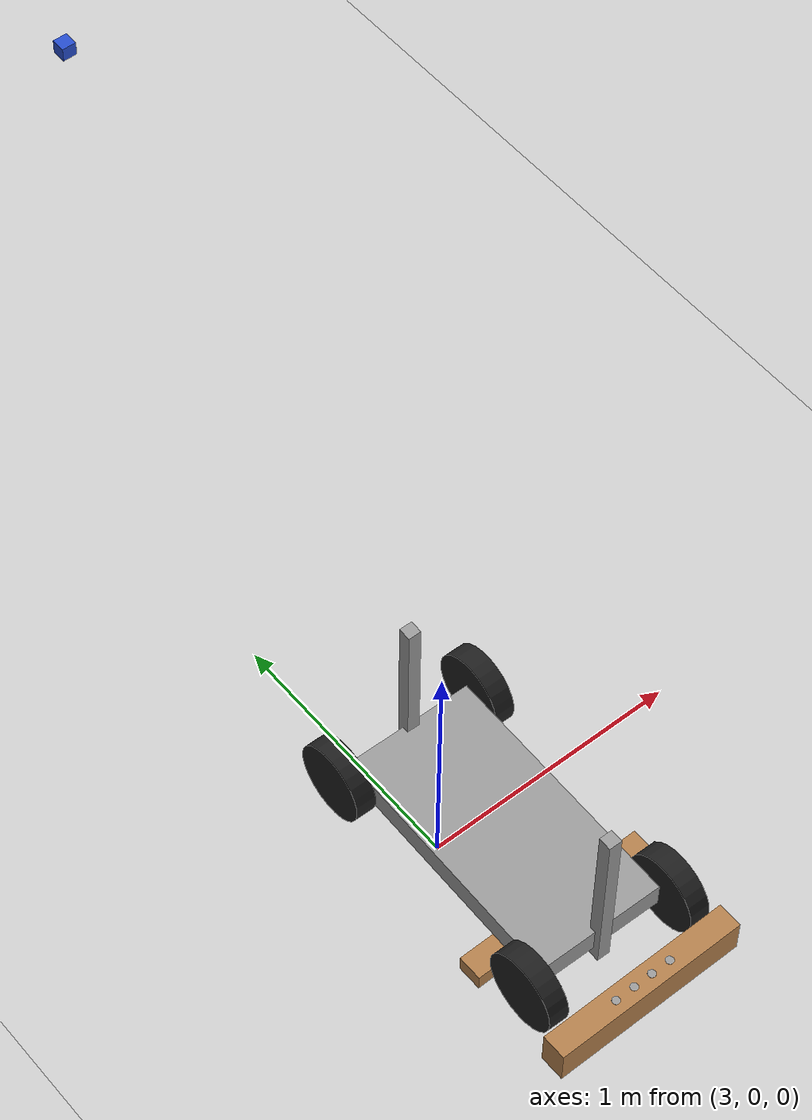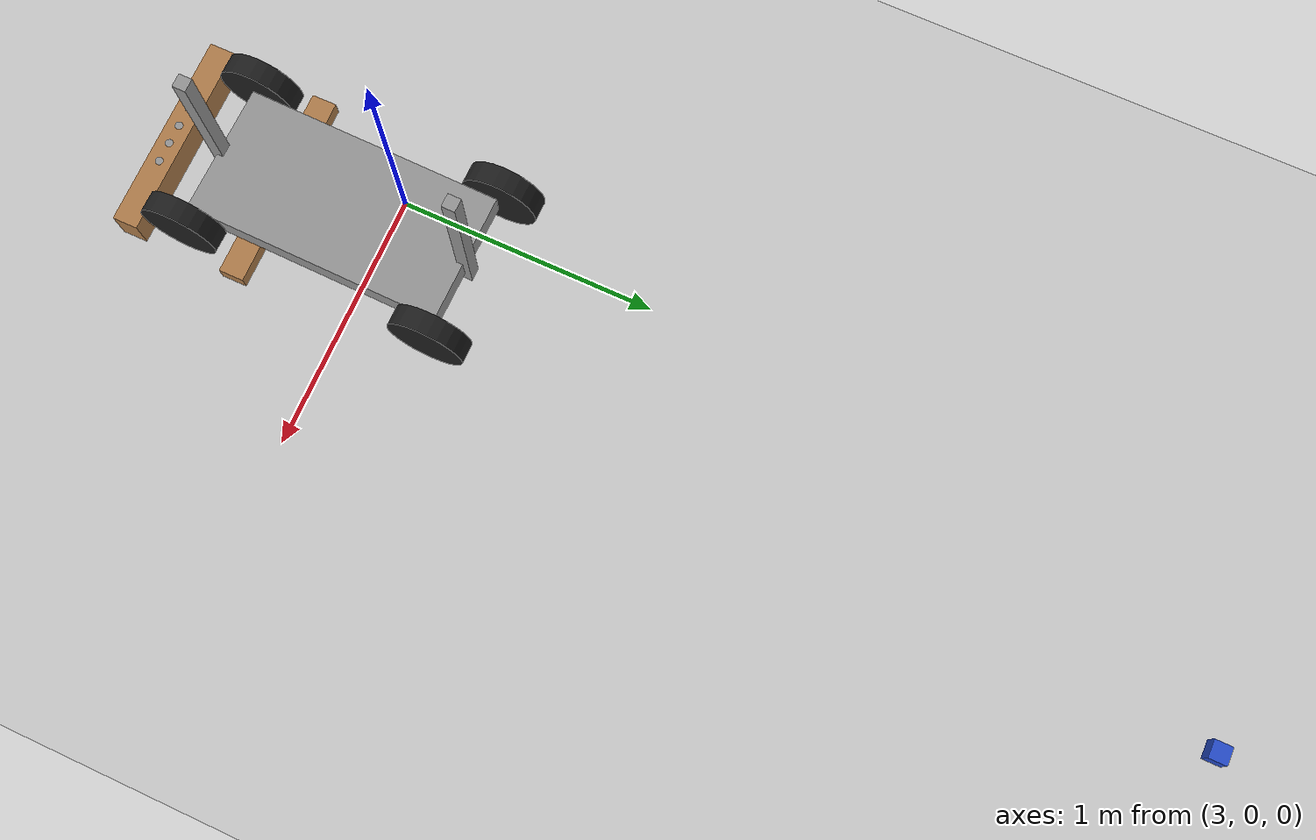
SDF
<sdf version="1.6">
 <world name="default">
  <model name="ground_plane">
   <static>1</static>
   <link name="link">
    <collision name="collision">
     <geometry><plane><normal>0 0 1</normal><size>100 100</size></plane></geometry>
     <surface>
      <contact><collide_bitmask>65535</collide_bitmask></contact>
      <friction><ode><mu>100</mu><mu2>50</mu2></ode></friction>
     </surface>
    </collision>
    <visual name="visual">
     <cast_shadows>0</cast_shadows>
     <geometry><plane><normal>0 0 1</normal><size>100 100</size></plane></geometry>
     <material>
      <script><uri>file://media/materials/scripts/gazebo.material</uri><name>Gazebo/Grey</name></script>
     </material>
    </visual>
   </link>
  </model>
  <light name="sun" type="directional">
   <pose>0 0 10 0 -0 0</pose>
   <diffuse>0.8 0.8 0.8 1</diffuse>
   <specular>0.2 0.2 0.2 1</specular>
   <attenuation>
    <range>1000</range>
    <constant>0.9</constant>
    <linear>0.01</linear>
    <quadratic>0.001</quadratic>
   </attenuation>
   <direction>-0.5 0.1 -0.9</direction>
  </light>
  <model name="demo_cube">
   <static>0</static>
   <link name="link">
    <inertial>
     <mass>0.25</mass>
     <inertia><ixx>0.001</ixx><ixy>0</ixy><ixz>0</ixz><iyy>0.001</iyy><iyz>0</iyz><izz>0.001</izz></inertia>
    </inertial>
    <collision name="collision">
     <geometry><box><size>0.06 0.06 0.06</size></box></geometry>
     <surface>
      <friction><ode><mu>30</mu><mu2>30</mu2></ode></friction>
      <contact><ode><kp>1e+06</kp><kd>100</kd><max_vel>1</max_vel><min_depth>0.002</min_depth></ode></contact>
     </surface>
    </collision>
    <visual name="visual">
     <geometry><box><size>0.06 0.06 0.06</size></box></geometry>
     <material>
      <script><uri>file://media/materials/scripts/gazebo.material</uri><name>Gazebo/Blue</name></script>
     </material>
    </visual>
    <velocity_decay><linear>0</linear><angular>0</angular></velocity_decay>
   </link>
   <pose>3.8 3.15 0.802999 0 -0 0</pose>
  </model>
  <gravity>0 0 -9.8</gravity>
  <magnetic_field>6e-06 2.3e-05 -4.2e-05</magnetic_field>
  <atmosphere type="adiabatic"/>
  <physics name="default_physics" default="0" type="ode">
   <max_step_size>0.001</max_step_size>
   <real_time_factor>1</real_time_factor>
   <real_time_update_rate>1000</real_time_update_rate>
  </physics>
  <scene><ambient>0.4 0.4 0.4 1</ambient><background>0.7 0.7 0.7 1</background><shadows>1</shadows></scene>
  <audio><device>default</device></audio>
  <spherical_coordinates>
   <surface_model>EARTH_WGS84</surface_model>
   <latitude_deg>0</latitude_deg>
   <longitude_deg>0</longitude_deg>
   <elevation>0</elevation>
   <heading_deg>0</heading_deg>
  </spherical_coordinates>
  <model name="cart_front_steer">
   <link name="chassis">
    <pose>0 0 0.15 0 -0 0</pose>
    <inertial>
     <pose>0.1 0 0 0 -0 0</pose>
     <mass>10</mass>
     <inertia>
      <ixx>0.216667</ixx>
      <iyy>0.841667</iyy>
      <izz>1.04167</izz>
      <ixy>0</ixy>
      <ixz>0</ixz>
      <iyz>0</iyz>
     </inertia>
    </inertial>
    <collision name="collision"><geometry><box><size>1 0.5 0.1</size></box></geometry></collision>
    <visual name="visual">
     <geometry><box><size>1 0.5 0.1</size></box></geometry>
     <material>
      <script><uri>file://media/materials/scripts/gazebo.material</uri><name>Gazebo/Grey</name></script>
     </material>
    </visual>
   </link>
   <link name="rod">
    <pose>0.5 0 0.4 0 -0 0</pose>
    <inertial>
     <mass>2</mass>
     <inertia>
      <ixx>0.0820833</ixx>
      <iyy>0.0820833</iyy>
      <izz>0.000833333</izz>
      <ixy>0</ixy>
      <ixz>0</ixz>
      <iyz>0</iyz>
     </inertia>
    </inertial>
    <collision name="collision"><geometry><box><size>0.05 0.05 0.7</size></box></geometry></collision>
    <visual name="visual">
     <geometry><box><size>0.05 0.05 0.7</size></box></geometry>
     <material>
      <script><uri>file://media/materials/scripts/gazebo.material</uri><name>Gazebo/Grey</name></script>
     </material>
    </visual>
   </link>
   <joint name="rod_to_chassis" type="fixed"><parent>chassis</parent><child>rod</child></joint>
   <link name="second_rod">
    <pose>-0.5 0 0.4 0 -0 0</pose>
    <inertial>
     <mass>2</mass>
     <inertia>
      <ixx>0.0820833</ixx>
      <iyy>0.0820833</iyy>
      <izz>0.000833333</izz>
      <ixy>0</ixy>
      <ixz>0</ixz>
      <iyz>0</iyz>
     </inertia>
    </inertial>
    <collision name="collision"><geometry><box><size>0.05 0.05 0.7</size></box></geometry></collision>
    <visual name="visual">
     <geometry><box><size>0.05 0.05 0.7</size></box></geometry>
     <material>
      <script><uri>file://media/materials/scripts/gazebo.material</uri><name>Gazebo/Grey</name></script>
     </material>
    </visual>
   </link>
   <joint name="second_rod_to_chassis" type="fixed"><parent>chassis</parent><child>second_rod</child></joint>
   <link name="wheel_front_left">
    <pose>0.5 0.298 0.15 -1.5708 -0.087266 0</pose>
    <inertial>
     <mass>0.5</mass>
     <inertia>
      <ixx>0.00307917</ixx>
      <iyy>0.00307917</iyy>
      <izz>0.005625</izz>
      <ixy>0</ixy>
      <ixz>0</ixz>
      <iyz>0</iyz>
     </inertia>
    </inertial>
    <collision name="collision">
     <geometry><cylinder><radius>0.15</radius><length>0.08</length></cylinder></geometry>
     <surface>
      <friction><ode><mu>1</mu><mu2>1</mu2><fdir1>0 0 1</fdir1><slip1>0</slip1><slip2>0</slip2></ode></friction>
     </surface>
    </collision>
    <visual name="visual">
     <geometry><cylinder><radius>0.15</radius><length>0.08</length></cylinder></geometry>
     <material>
      <script><uri>file://media/materials/scripts/gazebo.material</uri><name>Gazebo/Black</name></script>
     </material>
    </visual>
   </link>
   <joint name="wheel_front_left_steer_spin" type="universal">
    <parent>chassis</parent>
    <child>wheel_front_left</child>
    <axis>
     <xyz>0 -1 0</xyz>
     <limit><lower>-0.610865</lower><upper>0.610865</upper></limit>
     <use_parent_model_frame>0</use_parent_model_frame>
     <dynamics><spring_reference>0</spring_reference><spring_stiffness>0</spring_stiffness></dynamics>
    </axis>
    <axis2>
     <xyz>0 0 1</xyz>
     <use_parent_model_frame>0</use_parent_model_frame>
     <dynamics><spring_reference>0</spring_reference><spring_stiffness>0</spring_stiffness></dynamics>
    </axis2>
   </joint>
   <link name="wheel_front_right">
    <pose>0.5 -0.298 0.15 -1.5708 -0.087266 0</pose>
    <inertial>
     <mass>0.5</mass>
     <inertia>
      <ixx>0.00307917</ixx>
      <iyy>0.00307917</iyy>
      <izz>0.005625</izz>
      <ixy>0</ixy>
      <ixz>0</ixz>
      <iyz>0</iyz>
     </inertia>
    </inertial>
    <collision name="collision">
     <geometry><cylinder><radius>0.15</radius><length>0.08</length></cylinder></geometry>
     <surface>
      <friction><ode><mu>1</mu><mu2>1</mu2><fdir1>0 0 1</fdir1><slip1>0</slip1><slip2>0</slip2></ode></friction>
     </surface>
    </collision>
    <visual name="visual">
     <geometry><cylinder><radius>0.15</radius><length>0.08</length></cylinder></geometry>
     <material>
      <script><uri>file://media/materials/scripts/gazebo.material</uri><name>Gazebo/Black</name></script>
     </material>
    </visual>
   </link>
   <joint name="wheel_front_right_steer_spin" type="universal">
    <parent>chassis</parent>
    <child>wheel_front_right</child>
    <axis>
     <xyz>0 -1 0</xyz>
     <limit><lower>-0.610865</lower><upper>0.610865</upper></limit>
     <use_parent_model_frame>0</use_parent_model_frame>
     <dynamics><spring_reference>0</spring_reference><spring_stiffness>0</spring_stiffness></dynamics>
    </axis>
    <axis2>
     <xyz>0 0 1</xyz>
     <use_parent_model_frame>0</use_parent_model_frame>
     <dynamics><spring_reference>0</spring_reference><spring_stiffness>0</spring_stiffness></dynamics>
    </axis2>
   </joint>
   <link name="wheel_rear_left">
    <pose>-0.5 0.298 0.15 -1.5708 0 0</pose>
    <inertial>
     <mass>0.5</mass>
     <inertia>
      <ixx>0.00307917</ixx>
      <iyy>0.00307917</iyy>
      <izz>0.005625</izz>
      <ixy>0</ixy>
      <ixz>0</ixz>
      <iyz>0</iyz>
     </inertia>
    </inertial>
    <collision name="collision">
     <geometry><cylinder><radius>0.15</radius><length>0.08</length></cylinder></geometry>
     <surface>
      <friction><ode><mu>1</mu><mu2>1</mu2><fdir1>0 0 1</fdir1><slip1>0</slip1><slip2>0</slip2></ode></friction>
     </surface>
    </collision>
    <visual name="visual">
     <geometry><cylinder><radius>0.15</radius><length>0.08</length></cylinder></geometry>
     <material>
      <script><uri>file://media/materials/scripts/gazebo.material</uri><name>Gazebo/Black</name></script>
     </material>
    </visual>
   </link>
   <joint name="wheel_rear_left_spin" type="revolute">
    <parent>chassis</parent>
    <child>wheel_rear_left</child>
    <axis>
     <xyz>0 0 1</xyz>
     <use_parent_model_frame>0</use_parent_model_frame>
     <limit><lower>-1e+16</lower><upper>1e+16</upper></limit>
     <dynamics><spring_reference>0</spring_reference><spring_stiffness>0</spring_stiffness></dynamics>
    </axis>
   </joint>
   <link name="wheel_rear_right">
    <pose>-0.5 -0.298 0.15 -1.5708 0 0</pose>
    <inertial>
     <mass>0.5</mass>
     <inertia>
      <ixx>0.00307917</ixx>
      <iyy>0.00307917</iyy>
      <izz>0.005625</izz>
      <ixy>0</ixy>
      <ixz>0</ixz>
      <iyz>0</iyz>
     </inertia>
    </inertial>
    <collision name="collision">
     <geometry><cylinder><radius>0.15</radius><length>0.08</length></cylinder></geometry>
     <surface>
      <friction><ode><mu>1</mu><mu2>1</mu2><fdir1>0 0 1</fdir1><slip1>0</slip1><slip2>0</slip2></ode></friction>
     </surface>
    </collision>
    <visual name="visual">
     <geometry><cylinder><radius>0.15</radius><length>0.08</length></cylinder></geometry>
     <material>
      <script><uri>file://media/materials/scripts/gazebo.material</uri><name>Gazebo/Black</name></script>
     </material>
    </visual>
   </link>
   <joint name="wheel_rear_right_spin" type="revolute">
    <parent>chassis</parent>
    <child>wheel_rear_right</child>
    <axis>
     <xyz>0 0 1</xyz>
     <use_parent_model_frame>0</use_parent_model_frame>
     <limit><lower>-1e+16</lower><upper>1e+16</upper></limit>
     <dynamics><spring_reference>0</spring_reference><spring_stiffness>0</spring_stiffness></dynamics>
    </axis>
   </joint>
   <pose>3.14889 -0.156115 -0 0 -0 1.55484</pose>
  </model>
  <model name="wooden_board_long">
   <link name="base">
    <pose>0 0 0.00523 0 -0 0</pose>
    <inertial>
     <mass>8.21651</mass>
     <inertia>
      <ixx>0.411432</ixx>
      <ixy>0</ixy>
      <ixz>0</ixz>
      <iyy>0.0202656</iyy>
      <iyz>0</iyz>
      <izz>0.403872</izz>
     </inertia>
    </inertial>
    <visual name="tee_nut_2">
     <pose>0 -0.038 0 0 -0 0</pose>
     <geometry><cylinder><radius>0.0152104</radius><length>0.143971</length></cylinder></geometry>
     <material>
      <script><uri>file://media/materials/scripts/gazebo.material</uri><name>Gazebo/Grey</name></script>
     </material>
    </visual>
    <visual name="tee_nut_4">
     <pose>0 0.116 0 0 -0 0</pose>
     <geometry><cylinder><radius>0.0152104</radius><length>0.143971</length></cylinder></geometry>
     <material>
      <script><uri>file://media/materials/scripts/gazebo.material</uri><name>Gazebo/Grey</name></script>
     </material>
    </visual>
    <visual name="visual">
     <geometry><box><size>0.096324 0.761949 0.142545</size></box></geometry>
     <material>
      <script><uri>file://media/materials/scripts/gazebo.material</uri><name>Gazebo/Wood</name></script>
     </material>
    </visual>
    <visual name="tee_nut_1">
     <pose>0 -0.116 0 0 -0 0</pose>
     <geometry><cylinder><radius>0.0152104</radius><length>0.143971</length></cylinder></geometry>
     <material>
      <script><uri>file://media/materials/scripts/gazebo.material</uri><name>Gazebo/Grey</name></script>
     </material>
    </visual>
    <visual name="tee_nut_3">
     <pose>0 0.038 0 0 -0 0</pose>
     <geometry><cylinder><radius>0.0152104</radius><length>0.143971</length></cylinder></geometry>
     <material>
      <script><uri>file://media/materials/scripts/gazebo.material</uri><name>Gazebo/Grey</name></script>
     </material>
    </visual>
    <collision name="collision">
     <geometry><box><size>0.096324 0.761949 0.142545</size></box></geometry>
     <surface>
      <friction>
       <ode><mu>1</mu><mu2>1</mu2><fdir1>0 0 0</fdir1><slip1>0</slip1><slip2>0</slip2></ode>
       <torsional>
        <coefficient>1</coefficient>
        <patch_radius>0</patch_radius>
        <surface_radius>0.01</surface_radius>
        <use_patch_radius>0</use_patch_radius>
        <ode><slip>0</slip></ode>
       </torsional>
      </friction>
      <bounce><restitution_coefficient>0</restitution_coefficient><threshold>1e+06</threshold></bounce>
      <contact>
       <collide_without_contact>0</collide_without_contact>
       <collide_without_contact_bitmask>1</collide_without_contact_bitmask>
       <collide_bitmask>1</collide_bitmask>
       <ode>
        <soft_cfm>0</soft_cfm>
        <soft_erp>0.2</soft_erp>
        <kp>100000</kp>
        <kd>100</kd>
        <max_vel>100</max_vel>
        <min_depth>0.001</min_depth>
       </ode>
       <bullet>
        <split_impulse>1</split_impulse>
        <split_impulse_penetration_threshold>-0.01</split_impulse_penetration_threshold>
        <soft_cfm>0</soft_cfm>
        <soft_erp>0.2</soft_erp>
        <kp>100000</kp>
        <kd>100</kd>
       </bullet>
      </contact>
     </surface>
    </collision>
   </link>
   <static>0</static>
   <pose>3.14518 -0.861657 0.064823 -0 3.5e-05 -1.5666</pose>
  </model>
  <model name="wooden_board_long_1">
   <link name="base">
    <pose>0 -0 0.00523 -0 -0 -0</pose>
    <inertial>
     <mass>3.80507</mass>
     <inertia>
      <ixx>0.185474</ixx>
      <ixy>0</ixy>
      <ixz>0</ixz>
      <iyy>0.00432412</iyy>
      <iyz>0</iyz>
      <izz>0.187034</izz>
     </inertia>
    </inertial>
    <visual name="tee_nut_3">
     <pose>0 0.038 0 0 -0 0</pose>
     <geometry><cylinder><radius>0.0152104</radius><length>0.0666797</length></cylinder></geometry>
     <material>
      <script><uri>file://media/materials/scripts/gazebo.material</uri><name>Gazebo/Grey</name></script>
     </material>
    </visual>
    <visual name="visual">
     <geometry><box><size>0.096324 0.761949 0.06602</size></box></geometry>
     <material>
      <script><uri>file://media/materials/scripts/gazebo.material</uri><name>Gazebo/Wood</name></script>
     </material>
    </visual>
    <visual name="tee_nut_2">
     <pose>0 -0.038 0 0 -0 0</pose>
     <geometry><cylinder><radius>0.0152104</radius><length>0.0666797</length></cylinder></geometry>
     <material>
      <script><uri>file://media/materials/scripts/gazebo.material</uri><name>Gazebo/Grey</name></script>
     </material>
    </visual>
    <visual name="tee_nut_1">
     <pose>0 -0.116 0 0 -0 0</pose>
     <geometry><cylinder><radius>0.0152104</radius><length>0.0666797</length></cylinder></geometry>
     <material>
      <script><uri>file://media/materials/scripts/gazebo.material</uri><name>Gazebo/Grey</name></script>
     </material>
    </visual>
    <visual name="tee_nut_4">
     <pose>0 0.116 0 0 -0 0</pose>
     <geometry><cylinder><radius>0.0152104</radius><length>0.0666797</length></cylinder></geometry>
     <material>
      <script><uri>file://media/materials/scripts/gazebo.material</uri><name>Gazebo/Grey</name></script>
     </material>
    </visual>
    <collision name="collision">
     <geometry><box><size>0.096324 0.761949 0.06602</size></box></geometry>
     <surface>
      <friction>
       <ode><mu>1</mu><mu2>1</mu2><fdir1>0 0 0</fdir1><slip1>0</slip1><slip2>0</slip2></ode>
       <torsional>
        <coefficient>1</coefficient>
        <patch_radius>0</patch_radius>
        <surface_radius>0.01</surface_radius>
        <use_patch_radius>0</use_patch_radius>
        <ode><slip>0</slip></ode>
       </torsional>
      </friction>
      <bounce><restitution_coefficient>0</restitution_coefficient><threshold>1e+06</threshold></bounce>
      <contact>
       <collide_without_contact>0</collide_without_contact>
       <collide_without_contact_bitmask>1</collide_without_contact_bitmask>
       <collide_bitmask>1</collide_bitmask>
       <ode>
        <soft_cfm>0</soft_cfm>
        <soft_erp>0.2</soft_erp>
        <kp>100000</kp>
        <kd>100</kd>
        <max_vel>100</max_vel>
        <min_depth>0.001</min_depth>
       </ode>
       <bullet>
        <split_impulse>1</split_impulse>
        <split_impulse_penetration_threshold>-0.01</split_impulse_penetration_threshold>
        <soft_cfm>0</soft_cfm>
        <soft_erp>0.2</soft_erp>
        <kp>100000</kp>
        <kd>100</kd>
       </bullet>
      </contact>
     </surface>
    </collision>
   </link>
   <static>0</static>
   <pose>3.14859 -0.444222 0.026688 0 -0 -1.56456</pose>
  </model>
 </world>
</sdf>
